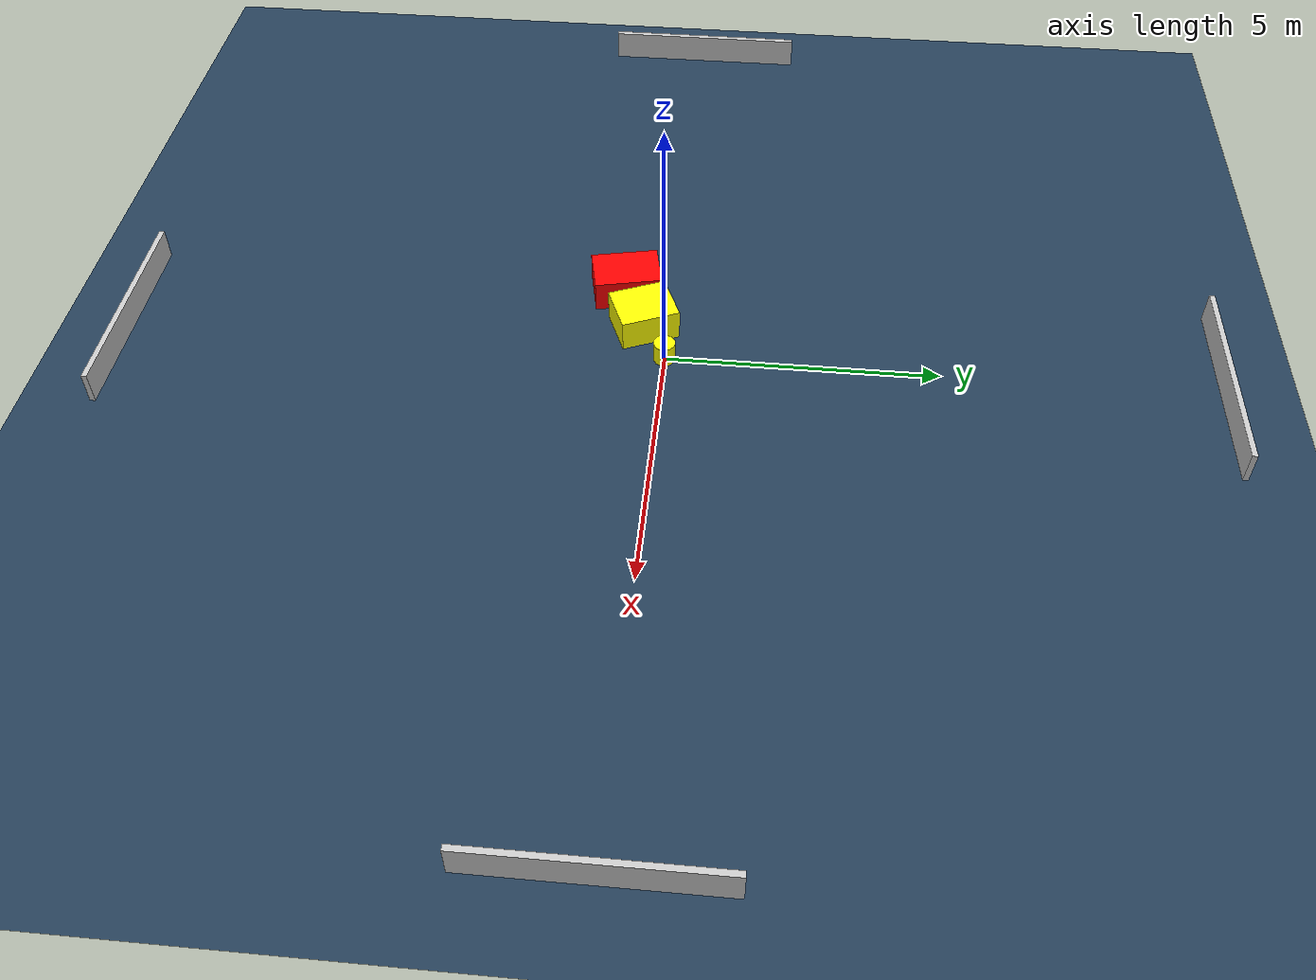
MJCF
<?xml version="1.0" ?>
<mujoco model="generated_environment">
  <option timestep="0.01" integrator="RK4" cone="elliptic"/>
  <default>
    <geom density="1"/>
  </default>
  <asset>
    <texture builtin="gradient" height="3072" name="skybox" rgb1="0.3 0.5 0.7" rgb2="0 0 0" type="skybox" width="512"/>
    <texture builtin="checker" height="300" name="groundplane" rgb1="0.2 0.3 0.4" rgb2="0.1 0.2 0.3" type="2d" width="300"/>
    <material name="groundplane" reflectance="0.2" texrepeat="5 5" texture="groundplane"/>
  </asset>
  <worldbody>
    <light dir="0 0 -1" directional="true" pos="0 0 1.5"/>
    <geom condim="3" friction="0.5 0.005 0.001" material="groundplane" name="floor" pos="0 0 0" size="0 0 0.05" type="plane"/>
    <body name="walls">
      <geom name="wall_1" condim="4" pos="-10.0 0.0 0.3" rgba="0.800000011920929 0.800000011920929 0.800000011920929 1.0" size="0.05 2.0 0.3" type="box"/>
      <geom name="wall_2" condim="4" pos="10.0 0.0 0.3" rgba="0.800000011920929 0.800000011920929 0.800000011920929 1.0" size="0.05 2.0 0.3" type="box"/>
      <geom name="wall_3" condim="4" pos="0.0 -10.0 0.3" rgba="0.800000011920929 0.800000011920929 0.800000011920929 1.0" size="2.0 0.05 0.3" type="box"/>
      <geom name="wall_4" condim="4" pos="0.0 10.0 0.3" rgba="0.800000011920929 0.800000011920929 0.800000011920929 1.0" size="2.0 0.05 0.3" type="box"/>
    </body>
    <body name="robot">
      <joint name="joint_x" type="slide" pos="0 0 0" axis="1 0 0"/>
      <joint name="joint_y" type="slide" pos="0 0 0" axis="0 1 0"/>
      <geom name="robot" type="cylinder" pos="0.0 0.0 0.2" size="0.2 0.2 0.0" mass="5.0" friction="1.0 0.005 0.0001" condim="4" rgba="1.0 1.0 0.0 1.0"/>
    </body>
    <body name="obstacle_1_movable">
      <geom name="obstacle_1_movable" condim="4" pos="-0.8175443057942282 -0.4589940739622797 0.3" euler="0 0 112.99899320711341" friction="0.0 0.005 0.001" rgba="1.0 1.0 0.0 1.0" size="0.5467070840502815 0.4635170364817417 0.3" type="box" mass="0.1"/>
      <joint type="free"/>
    </body>
    <body name="obstacle_2_static">
      <geom name="obstacle_2_static" condim="4" pos="-1.772777502819764 -0.8854683707143981 0.3" euler="0 0 282.0085256184106" friction="0.0 0.005 0.001" rgba="1.0 0.0 0.0 1.0" size="0.6294588807799868 0.44224620019831584 0.3" type="box"/>
    </body>
  </worldbody>
  <actuator>
    <motor name="actuator_x" joint="joint_x" gear="1" ctrlrange="-1 1"/>
    <motor name="actuator_y" joint="joint_y" gear="1" ctrlrange="-1 1"/>
  </actuator>
</mujoco>
